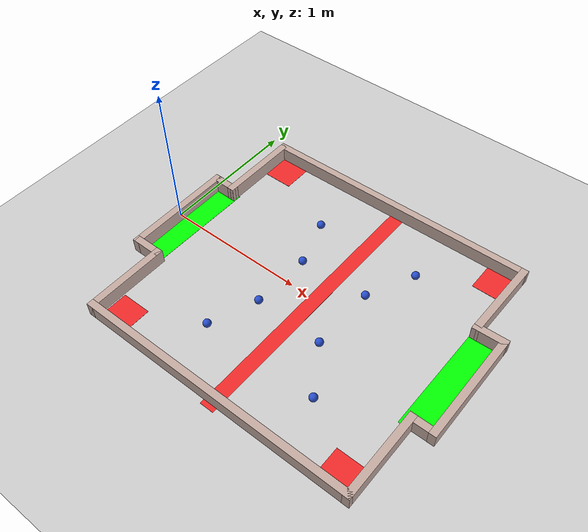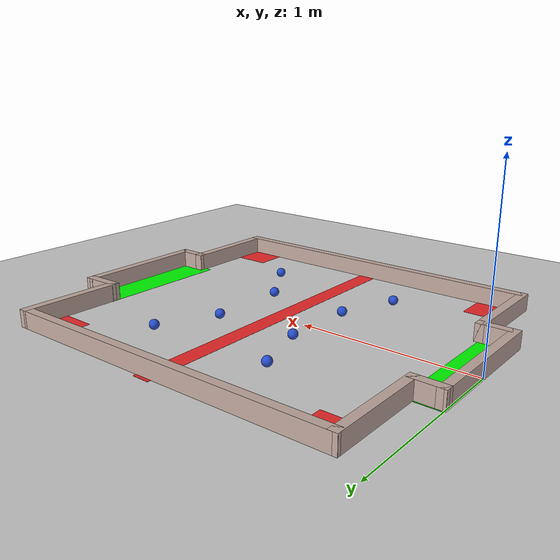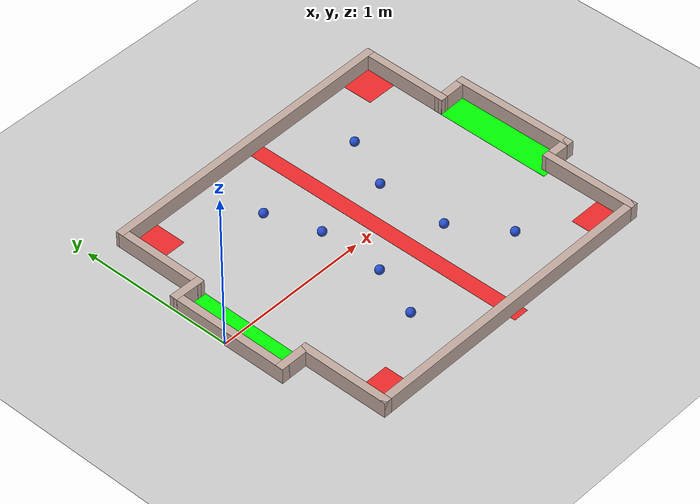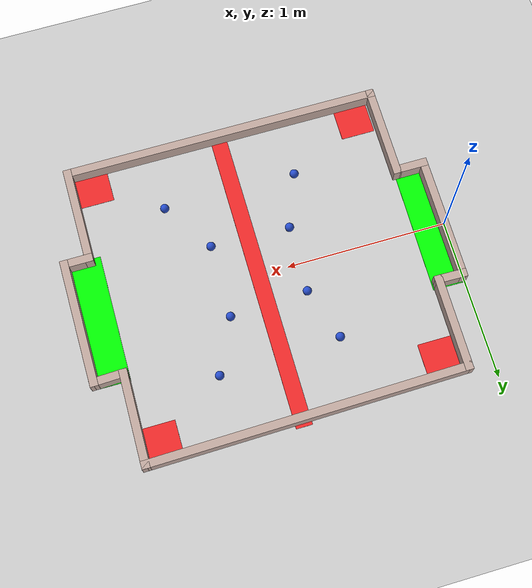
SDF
<sdf version="1.7">
 <world name="default">
  <light name="sun" type="directional">
   <pose>0 0 10 0 -0 0</pose>
   <diffuse>0.8 0.8 0.8 1</diffuse>
   <specular>0.2 0.2 0.2 1</specular>
   <attenuation>
    <range>1000</range>
    <constant>0.9</constant>
    <linear>0.01</linear>
    <quadratic>0.001</quadratic>
   </attenuation>
   <direction>-0.5 0.1 -0.9</direction>
   <spot><inner_angle>0</inner_angle><outer_angle>0</outer_angle><falloff>0</falloff></spot>
  </light>
  <model name="ground_plane">
   <static>1</static>
   <link name="link">
    <collision name="collision">
     <geometry><plane><normal>0 0 1</normal><size>100 100</size></plane></geometry>
     <surface>
      <contact><collide_bitmask>65535</collide_bitmask></contact>
      <friction><ode><mu>100</mu><mu2>50</mu2></ode></friction>
     </surface>
    </collision>
    <visual name="visual">
     <cast_shadows>0</cast_shadows>
     <geometry><plane><normal>0 0 1</normal><size>100 100</size></plane></geometry>
     <material>
      <script><uri>file://media/materials/scripts/gazebo.material</uri><name>Gazebo/Grey</name></script>
     </material>
    </visual>
   </link>
  </model>
  <gravity>0 0 -9.8</gravity>
  <magnetic_field>6e-06 2.3e-05 -4.2e-05</magnetic_field>
  <atmosphere type="adiabatic"/>
  <physics type="ode">
   <max_step_size>0.001</max_step_size>
   <real_time_factor>1</real_time_factor>
   <real_time_update_rate>1000</real_time_update_rate>
  </physics>
  <scene><ambient>0.4 0.4 0.4 1</ambient><background>0.7 0.7 0.7 1</background><shadows>1</shadows></scene>
  <spherical_coordinates>
   <surface_model>EARTH_WGS84</surface_model>
   <latitude_deg>0</latitude_deg>
   <longitude_deg>0</longitude_deg>
   <elevation>0</elevation>
   <heading_deg>0</heading_deg>
  </spherical_coordinates>
  <model name="ball2">
   <link name="ball">
    <inertial>
     <mass>0.01</mass>
     <inertia>
      <ixx>3.025e-06</ixx>
      <ixy>0</ixy>
      <ixz>0</ixz>
      <iyy>3.025e-06</iyy>
      <iyz>0</iyz>
      <izz>3.025e-06</izz>
     </inertia>
    </inertial>
    <collision name="ball_collision">
     <geometry><sphere><radius>0.0275</radius></sphere></geometry>
     <surface><friction><ode><mu>0.08</mu><mu2>0.08</mu2></ode></friction></surface>
    </collision>
    <visual name="ball_visual">
     <geometry><sphere><radius>0.0275</radius></sphere></geometry>
     <material>
      <script><name>Gazebo/Blue</name><uri>file://media/materials/scripts/gazebo.material</uri></script>
     </material>
    </visual>
   </link>
   <pose>0.921299 -0.235252 0.0275 0 -0 0</pose>
  </model>
  <model name="ball2_clone">
   <link name="ball">
    <inertial>
     <mass>0.01</mass>
     <inertia>
      <ixx>3.025e-06</ixx>
      <ixy>0</ixy>
      <ixz>0</ixz>
      <iyy>3.025e-06</iyy>
      <iyz>0</iyz>
      <izz>3.025e-06</izz>
     </inertia>
    </inertial>
    <collision name="ball_collision">
     <geometry><sphere><radius>0.0275</radius></sphere></geometry>
     <surface><friction><ode><mu>0.08</mu><mu2>0.08</mu2></ode></friction></surface>
    </collision>
    <visual name="ball_visual">
     <geometry><sphere><radius>0.0275</radius></sphere></geometry>
     <material>
      <script><name>Gazebo/Blue</name><uri>file://media/materials/scripts/gazebo.material</uri></script>
     </material>
    </visual>
   </link>
   <pose>0.933276 0.184911 0.0275 0 -0 0</pose>
  </model>
  <model name="ball2_clone_0">
   <link name="ball">
    <inertial>
     <mass>0.01</mass>
     <inertia>
      <ixx>3.025e-06</ixx>
      <ixy>0</ixy>
      <ixz>0</ixz>
      <iyy>3.025e-06</iyy>
      <iyz>0</iyz>
      <izz>3.025e-06</izz>
     </inertia>
    </inertial>
    <collision name="ball_collision">
     <geometry><sphere><radius>0.0275</radius></sphere></geometry>
     <surface><friction><ode><mu>0.08</mu><mu2>0.08</mu2></ode></friction></surface>
    </collision>
    <visual name="ball_visual">
     <geometry><sphere><radius>0.0275</radius></sphere></geometry>
     <material>
      <script><name>Gazebo/Blue</name><uri>file://media/materials/scripts/gazebo.material</uri></script>
     </material>
    </visual>
   </link>
   <pose>0.827526 0.511721 0.0275 0 -0 0</pose>
  </model>
  <model name="ball2_clone_1">
   <link name="ball">
    <inertial>
     <mass>0.01</mass>
     <inertia>
      <ixx>3.025e-06</ixx>
      <ixy>0</ixy>
      <ixz>0</ixz>
      <iyy>3.025e-06</iyy>
      <iyz>0</iyz>
      <izz>3.025e-06</izz>
     </inertia>
    </inertial>
    <collision name="ball_collision">
     <geometry><sphere><radius>0.0275</radius></sphere></geometry>
     <surface><friction><ode><mu>0.08</mu><mu2>0.08</mu2></ode></friction></surface>
    </collision>
    <visual name="ball_visual">
     <geometry><sphere><radius>0.0275</radius></sphere></geometry>
     <material>
      <script><name>Gazebo/Blue</name><uri>file://media/materials/scripts/gazebo.material</uri></script>
     </material>
    </visual>
   </link>
   <pose>0.793948 -0.566414 0.0275 0 -0 0</pose>
  </model>
  <model name="green-tile">
   <pose>1.80149 -0.553541 0 0 0 -1.57978</pose>
   <link name="Wall_15">
    <collision name="Wall_15_Collision">
     <geometry><box><size>0.80027 0.2 0.001</size></box></geometry>
     <pose>0 0 0.0005 0 -0 0</pose>
    </collision>
    <visual name="Wall_15_Visual">
     <pose>0 0 0.0005 0 -0 0</pose>
     <geometry><box><size>0.80027 0.2 0.001</size></box></geometry>
     <material>
      <script><uri>file://media/materials/scripts/gazebo.material</uri><name>Gazebo/Grey</name></script>
      <ambient>0 1 0 1</ambient>
     </material>
     <meta><layer>0</layer></meta>
    </visual>
    <pose>-0.525932 -1.7105 0 0 -0 0</pose>
   </link>
   <static>1</static>
  </model>
  <model name="playground-2">
   <pose>1.15466 1.46369 0 0 -0 0</pose>
   <link name="Wall_17">
    <collision name="Wall_17_Collision">
     <geometry><box><size>0.6 0.05 0.1</size></box></geometry>
     <pose>0 0 0.05 0 -0 0</pose>
    </collision>
    <visual name="Wall_17_Visual">
     <pose>0 0 0.05 0 -0 0</pose>
     <geometry><box><size>0.6 0.05 0.1</size></box></geometry>
     <material>
      <script><uri>file://media/materials/scripts/gazebo.material</uri><name>Gazebo/Grey</name></script>
      <ambient>0.760784 0.662745 0.627451 1</ambient>
     </material>
     <meta><layer>0</layer></meta>
    </visual>
    <pose>-0.986129 -0.833381 0 0 -0 -1.57443</pose>
   </link>
   <link name="Wall_18">
    <collision name="Wall_18_Collision">
     <geometry><box><size>0.2 0.05 0.1</size></box></geometry>
     <pose>0 0 0.05 0 -0 0</pose>
    </collision>
    <visual name="Wall_18_Visual">
     <pose>0 0 0.05 0 -0 0</pose>
     <geometry><box><size>0.2 0.05 0.1</size></box></geometry>
     <material>
      <script><uri>file://media/materials/scripts/gazebo.material</uri><name>Gazebo/Grey</name></script>
      <ambient>0.760784 0.662745 0.627451 1</ambient>
     </material>
     <meta><layer>0</layer></meta>
    </visual>
    <pose>-1.06213 -1.10688 0 0 -0 3.1216</pose>
   </link>
   <link name="Wall_19">
    <collision name="Wall_19_Collision">
     <geometry><box><size>0.79741 0.05 0.1</size></box></geometry>
     <pose>0 0 0.05 0 -0 0</pose>
    </collision>
    <visual name="Wall_19_Visual">
     <pose>0 0 0.05 0 -0 0</pose>
     <geometry><box><size>0.79741 0.05 0.1</size></box></geometry>
     <material>
      <script><uri>file://media/materials/scripts/gazebo.material</uri><name>Gazebo/Grey</name></script>
      <ambient>0.760784 0.662745 0.627451 1</ambient>
     </material>
     <meta><layer>0</layer></meta>
    </visual>
    <pose>-1.13713 -1.47888 0 0 -0 -1.5708</pose>
   </link>
   <link name="Wall_20">
    <collision name="Wall_20_Collision">
     <geometry><box><size>0.222 0.05 0.1</size></box></geometry>
     <pose>0 0 0.05 0 -0 0</pose>
    </collision>
    <visual name="Wall_20_Visual">
     <pose>0 0 0.05 0 -0 0</pose>
     <geometry><box><size>0.222 0.05 0.1</size></box></geometry>
     <material>
      <script><uri>file://media/materials/scripts/gazebo.material</uri><name>Gazebo/Grey</name></script>
      <ambient>0.760784 0.662745 0.627451 1</ambient>
     </material>
     <meta><layer>0</layer></meta>
    </visual>
    <pose>-1.05113 -1.85238 0 0 -0 0</pose>
   </link>
   <link name="Wall_21">
    <collision name="Wall_21_Collision">
     <geometry><box><size>0.59 0.05 0.1</size></box></geometry>
     <pose>0 0 0.05 0 -0 0</pose>
    </collision>
    <visual name="Wall_21_Visual">
     <pose>0 0 0.05 0 -0 0</pose>
     <geometry><box><size>0.59 0.05 0.1</size></box></geometry>
     <material>
      <script><uri>file://media/materials/scripts/gazebo.material</uri><name>Gazebo/Grey</name></script>
      <ambient>0.760784 0.662745 0.627451 1</ambient>
     </material>
     <meta><layer>0</layer></meta>
    </visual>
    <pose>-0.965129 -2.12238 0 0 -0 -1.5708</pose>
   </link>
   <link name="Wall_22">
    <collision name="Wall_22_Collision">
     <geometry><box><size>2 0.05 0.1</size></box></geometry>
     <pose>0 0 0.05 0 -0 0</pose>
    </collision>
    <visual name="Wall_22_Visual">
     <pose>0 0 0.05 0 -0 0</pose>
     <geometry><box><size>2 0.05 0.1</size></box></geometry>
     <material>
      <script><uri>file://media/materials/scripts/gazebo.material</uri><name>Gazebo/Grey</name></script>
      <ambient>0.760784 0.662745 0.627451 1</ambient>
     </material>
     <meta><layer>0</layer></meta>
    </visual>
    <pose>0.009871 -2.39238 0 0 -0 0</pose>
   </link>
   <link name="Wall_23">
    <collision name="Wall_23_Collision">
     <geometry><box><size>0.618304 0.05 0.1</size></box></geometry>
     <pose>0 0 0.05 0 -0 0</pose>
    </collision>
    <visual name="Wall_23_Visual">
     <pose>0 0 0.05 0 -0 0</pose>
     <geometry><box><size>0.618304 0.05 0.1</size></box></geometry>
     <material>
      <script><uri>file://media/materials/scripts/gazebo.material</uri><name>Gazebo/Grey</name></script>
      <ambient>0.760784 0.662745 0.627451 1</ambient>
     </material>
     <meta><layer>0</layer></meta>
    </visual>
    <pose>0.985871 -2.10838 0 0 -0 1.56727</pose>
   </link>
   <link name="Wall_24">
    <collision name="Wall_24_Collision">
     <geometry><box><size>0.2 0.05 0.1</size></box></geometry>
     <pose>0 0 0.05 0 -0 0</pose>
    </collision>
    <visual name="Wall_24_Visual">
     <pose>0 0 0.05 0 -0 0</pose>
     <geometry><box><size>0.2 0.05 0.1</size></box></geometry>
     <material>
      <script><uri>file://media/materials/scripts/gazebo.material</uri><name>Gazebo/Grey</name></script>
      <ambient>0.760784 0.662745 0.627451 1</ambient>
     </material>
     <meta><layer>0</layer></meta>
    </visual>
    <pose>1.06187 -1.82438 0 0 -0 0</pose>
   </link>
   <link name="Wall_25">
    <collision name="Wall_25_Collision">
     <geometry><box><size>0.800017 0.05 0.1</size></box></geometry>
     <pose>0 0 0.05 0 -0 0</pose>
    </collision>
    <visual name="Wall_25_Visual">
     <pose>0 0 0.05 0 -0 0</pose>
     <geometry><box><size>0.800017 0.05 0.1</size></box></geometry>
     <material>
      <script><uri>file://media/materials/scripts/gazebo.material</uri><name>Gazebo/Grey</name></script>
      <ambient>0.760784 0.662745 0.627451 1</ambient>
     </material>
     <meta><layer>0</layer></meta>
    </visual>
    <pose>1.13687 -1.44938 0 0 -0 1.5708</pose>
   </link>
   <link name="Wall_26">
    <collision name="Wall_26_Collision">
     <geometry><box><size>0.230635 0.05 0.1</size></box></geometry>
     <pose>0 0 0.05 0 -0 0</pose>
    </collision>
    <visual name="Wall_26_Visual">
     <pose>0 0 0.05 0 -0 0</pose>
     <geometry><box><size>0.230635 0.05 0.1</size></box></geometry>
     <material>
      <script><uri>file://media/materials/scripts/gazebo.material</uri><name>Gazebo/Grey</name></script>
      <ambient>0.760784 0.662745 0.627451 1</ambient>
     </material>
     <meta><layer>0</layer></meta>
    </visual>
    <pose>1.04659 -1.07709 0 0 -0 -3.1116</pose>
   </link>
   <link name="Wall_27">
    <collision name="Wall_27_Collision">
     <geometry><box><size>0.6 0.05 0.1</size></box></geometry>
     <pose>0 0 0.05 0 -0 0</pose>
    </collision>
    <visual name="Wall_27_Visual">
     <pose>0 0 0.05 0 -0 0</pose>
     <geometry><box><size>0.6 0.05 0.1</size></box></geometry>
     <material>
      <script><uri>file://media/materials/scripts/gazebo.material</uri><name>Gazebo/Grey</name></script>
      <ambient>0.760784 0.662745 0.627451 1</ambient>
     </material>
     <meta><layer>0</layer></meta>
    </visual>
    <pose>0.960594 -0.80459 0 0 -0 1.55526</pose>
   </link>
   <link name="Wall_28">
    <collision name="Wall_28_Collision">
     <geometry><box><size>2 0.05 0.1</size></box></geometry>
     <pose>0 0 0.05 0 -0 0</pose>
    </collision>
    <visual name="Wall_28_Visual">
     <pose>0 0 0.05 0 -0 0</pose>
     <geometry><box><size>2 0.05 0.1</size></box></geometry>
     <material>
      <script><uri>file://media/materials/scripts/gazebo.material</uri><name>Gazebo/Grey</name></script>
      <ambient>0.760784 0.662745 0.627451 1</ambient>
     </material>
     <meta><layer>0</layer></meta>
    </visual>
    <pose>-0.010129 -0.543881 0 0 -0 -3.12672</pose>
   </link>
   <static>1</static>
  </model>
  <model name="green-tile_clone">
   <pose>3.8872 -0.52619 0 0 0 -1.57978</pose>
   <link name="Wall_15">
    <collision name="Wall_15_Collision">
     <geometry><box><size>0.80027 0.2 0.001</size></box></geometry>
     <pose>0 0 0.0005 0 -0 0</pose>
    </collision>
    <visual name="Wall_15_Visual">
     <pose>0 0 0.0005 0 -0 0</pose>
     <geometry><box><size>0.80027 0.2 0.001</size></box></geometry>
     <material>
      <script><uri>file://media/materials/scripts/gazebo.material</uri><name>Gazebo/Grey</name></script>
      <ambient>0 1 0 1</ambient>
     </material>
     <meta><layer>0</layer></meta>
    </visual>
    <pose>-0.525932 -1.7105 0 0 -0 0</pose>
   </link>
   <static>1</static>
  </model>
  <model name="red-tile-v2">
   <pose>0.886946 1.84946 0 0 -0 0</pose>
   <link name="Wall_31">
    <collision name="Wall_31_Collision">
     <geometry><box><size>1.95012 0.1 0.001</size></box></geometry>
     <pose>0 0 0.0005 0 -0 0</pose>
    </collision>
    <visual name="Wall_31_Visual">
     <pose>0 0 0.0005 0 -0 0</pose>
     <geometry><box><size>1.95012 0.1 0.001</size></box></geometry>
     <material>
      <script><uri>file://media/materials/scripts/gazebo.material</uri><name>Gazebo/Grey</name></script>
      <ambient>0.937255 0.160784 0.160784 1</ambient>
     </material>
     <meta><layer>0</layer></meta>
    </visual>
    <pose>0.297 -1.85997 0 0 -0 -1.5708</pose>
   </link>
   <static>1</static>
  </model>
  <model name="red-tile-small-v2">
   <pose>0.113744 3.1738 0 0 -0 0</pose>
   <link name="Wall_36">
    <collision name="Wall_36_Collision">
     <geometry><box><size>0.21 0.2 0.001</size></box></geometry>
     <pose>0 0 0.0005 0 -0 0</pose>
    </collision>
    <visual name="Wall_36_Visual">
     <pose>0 0 0.0005 0 -0 0</pose>
     <geometry><box><size>0.21 0.2 0.001</size></box></geometry>
     <material>
      <script><uri>file://media/materials/scripts/gazebo.material</uri><name>Gazebo/Grey</name></script>
      <ambient>0.937255 0.160784 0.160784 1</ambient>
     </material>
     <meta><layer>0</layer></meta>
    </visual>
    <pose>0.1815 -2.3905 0 0 -0 0</pose>
   </link>
   <static>1</static>
  </model>
  <model name="red-tile-small-v2_clone">
   <pose>0.146534 1.57265 0 0 -0 0</pose>
   <link name="Wall_36">
    <collision name="Wall_36_Collision">
     <geometry><box><size>0.21 0.2 0.001</size></box></geometry>
     <pose>0 0 0.0005 0 -0 0</pose>
    </collision>
    <visual name="Wall_36_Visual">
     <pose>0 0 0.0005 0 -0 0</pose>
     <geometry><box><size>0.21 0.2 0.001</size></box></geometry>
     <material>
      <script><uri>file://media/materials/scripts/gazebo.material</uri><name>Gazebo/Grey</name></script>
      <ambient>0.937255 0.160784 0.160784 1</ambient>
     </material>
     <meta><layer>0</layer></meta>
    </visual>
    <pose>0.1815 -2.3905 0 0 -0 0</pose>
   </link>
   <static>1</static>
  </model>
  <model name="red-tile-small-v2_clone_0">
   <pose>1.81882 3.20382 0 0 -0 0</pose>
   <link name="Wall_36">
    <collision name="Wall_36_Collision">
     <geometry><box><size>0.21 0.2 0.001</size></box></geometry>
     <pose>0 0 0.0005 0 -0 0</pose>
    </collision>
    <visual name="Wall_36_Visual">
     <pose>0 0 0.0005 0 -0 0</pose>
     <geometry><box><size>0.21 0.2 0.001</size></box></geometry>
     <material>
      <script><uri>file://media/materials/scripts/gazebo.material</uri><name>Gazebo/Grey</name></script>
      <ambient>0.937255 0.160784 0.160784 1</ambient>
     </material>
     <meta><layer>0</layer></meta>
    </visual>
    <pose>0.1815 -2.3905 0 0 -0 0</pose>
   </link>
   <static>1</static>
  </model>
  <model name="red-tile-small-v2_clone_0_clone">
   <pose>1.83205 1.56914 0 0 -0 0</pose>
   <link name="Wall_36">
    <collision name="Wall_36_Collision">
     <geometry><box><size>0.21 0.2 0.001</size></box></geometry>
     <pose>0 0 0.0005 0 -0 0</pose>
    </collision>
    <visual name="Wall_36_Visual">
     <pose>0 0 0.0005 0 -0 0</pose>
     <geometry><box><size>0.21 0.2 0.001</size></box></geometry>
     <material>
      <script><uri>file://media/materials/scripts/gazebo.material</uri><name>Gazebo/Grey</name></script>
      <ambient>0.937255 0.160784 0.160784 1</ambient>
     </material>
     <meta><layer>0</layer></meta>
    </visual>
    <pose>0.1815 -2.3905 0 0 -0 0</pose>
   </link>
   <static>1</static>
  </model>
  <model name="ball2_clone_2">
   <link name="ball">
    <inertial>
     <mass>0.01</mass>
     <inertia>
      <ixx>3.025e-06</ixx>
      <ixy>0</ixy>
      <ixz>0</ixz>
      <iyy>3.025e-06</iyy>
      <iyz>0</iyz>
      <izz>3.025e-06</izz>
     </inertia>
    </inertial>
    <collision name="ball_collision">
     <geometry><sphere><radius>0.0275</radius></sphere></geometry>
     <surface><friction><ode><mu>0.08</mu><mu2>0.08</mu2></ode></friction></surface>
    </collision>
    <visual name="ball_visual">
     <geometry><sphere><radius>0.0275</radius></sphere></geometry>
     <material>
      <script><name>Gazebo/Blue</name><uri>file://media/materials/scripts/gazebo.material</uri></script>
     </material>
    </visual>
   </link>
   <pose>1.41476 -0.250115 0.0275 0 -0 0</pose>
  </model>
  <model name="ball2_clone_1_clone">
   <link name="ball">
    <inertial>
     <mass>0.01</mass>
     <inertia>
      <ixx>3.025e-06</ixx>
      <ixy>0</ixy>
      <ixz>0</ixz>
      <iyy>3.025e-06</iyy>
      <iyz>0</iyz>
      <izz>3.025e-06</izz>
     </inertia>
    </inertial>
    <collision name="ball_collision">
     <geometry><sphere><radius>0.0275</radius></sphere></geometry>
     <surface><friction><ode><mu>0.08</mu><mu2>0.08</mu2></ode></friction></surface>
    </collision>
    <visual name="ball_visual">
     <geometry><sphere><radius>0.0275</radius></sphere></geometry>
     <material>
      <script><name>Gazebo/Blue</name><uri>file://media/materials/scripts/gazebo.material</uri></script>
     </material>
    </visual>
   </link>
   <pose>1.62269 -0.567745 0.0275 0 -0 0</pose>
  </model>
  <model name="ball2_clone_clone">
   <link name="ball">
    <inertial>
     <mass>0.01</mass>
     <inertia>
      <ixx>3.025e-06</ixx>
      <ixy>0</ixy>
      <ixz>0</ixz>
      <iyy>3.025e-06</iyy>
      <iyz>0</iyz>
      <izz>3.025e-06</izz>
     </inertia>
    </inertial>
    <collision name="ball_collision">
     <geometry><sphere><radius>0.0275</radius></sphere></geometry>
     <surface><friction><ode><mu>0.08</mu><mu2>0.08</mu2></ode></friction></surface>
    </collision>
    <visual name="ball_visual">
     <geometry><sphere><radius>0.0275</radius></sphere></geometry>
     <material>
      <script><name>Gazebo/Blue</name><uri>file://media/materials/scripts/gazebo.material</uri></script>
     </material>
    </visual>
   </link>
   <pose>1.419 0.20955 0.0275 0 -0 0</pose>
  </model>
  <model name="ball2_clone_0_clone">
   <link name="ball">
    <inertial>
     <mass>0.01</mass>
     <inertia>
      <ixx>3.025e-06</ixx>
      <ixy>0</ixy>
      <ixz>0</ixz>
      <iyy>3.025e-06</iyy>
      <iyz>0</iyz>
      <izz>3.025e-06</izz>
     </inertia>
    </inertial>
    <collision name="ball_collision">
     <geometry><sphere><radius>0.0275</radius></sphere></geometry>
     <surface><friction><ode><mu>0.08</mu><mu2>0.08</mu2></ode></friction></surface>
    </collision>
    <visual name="ball_visual">
     <geometry><sphere><radius>0.0275</radius></sphere></geometry>
     <material>
      <script><name>Gazebo/Blue</name><uri>file://media/materials/scripts/gazebo.material</uri></script>
     </material>
    </visual>
   </link>
   <pose>1.57636 0.539195 0.0275 0 -0 0</pose>
  </model>
 </world>
</sdf>
